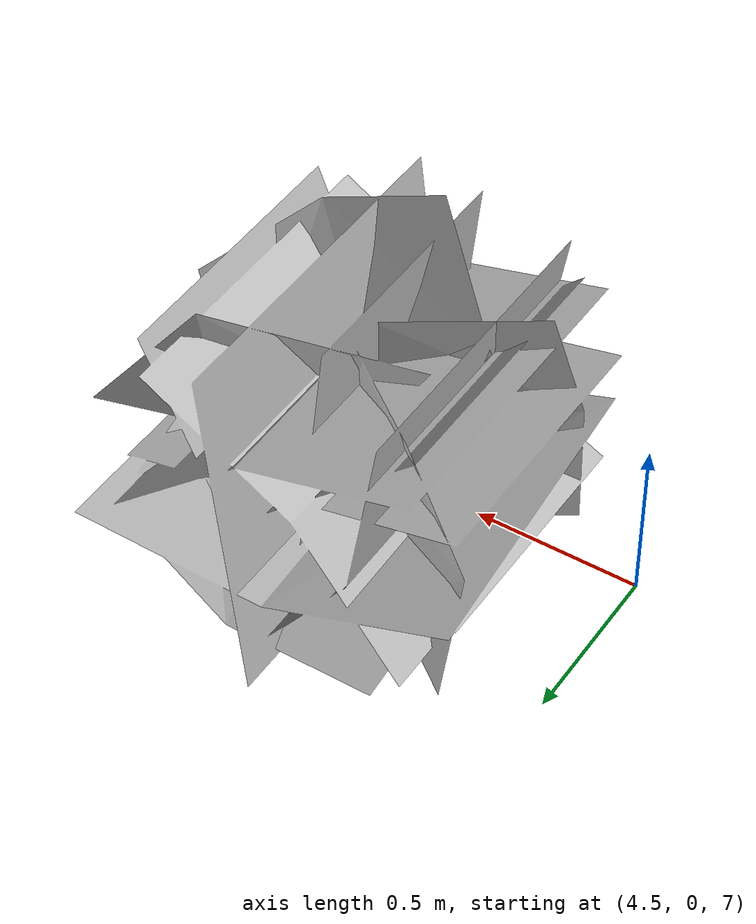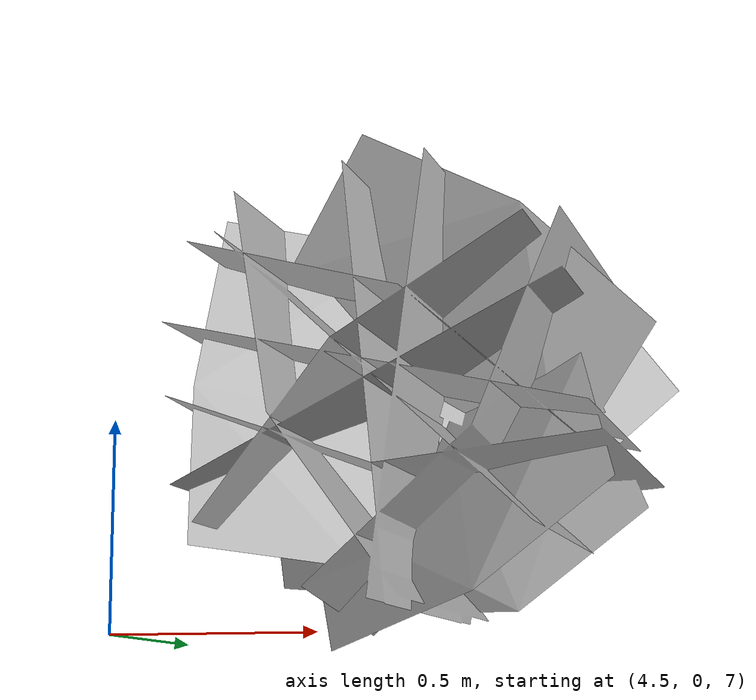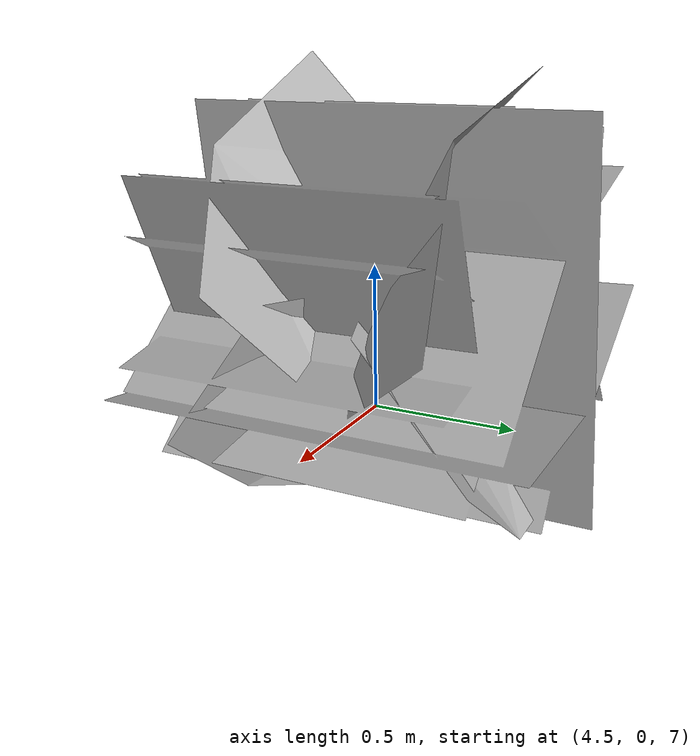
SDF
<?xml version="1.0" ?>
<sdf version="1.9">
  <model name="bush_03">
    <static>true</static>
    <link name="link">
      <collision name="collision">
        <pose>0 0 0.5 0 0 0</pose>
        <geometry>
          <box>
            <size>1.2 1.2 1.0</size>
          </box>
        </geometry>
      </collision>
      <visual name="visual">
        <geometry>
          <mesh>
            <uri>model://bush_03/meshes/Bush-03.obj</uri>
          </mesh>
        </geometry>
      </visual>
    </link>
  </model>
</sdf>
